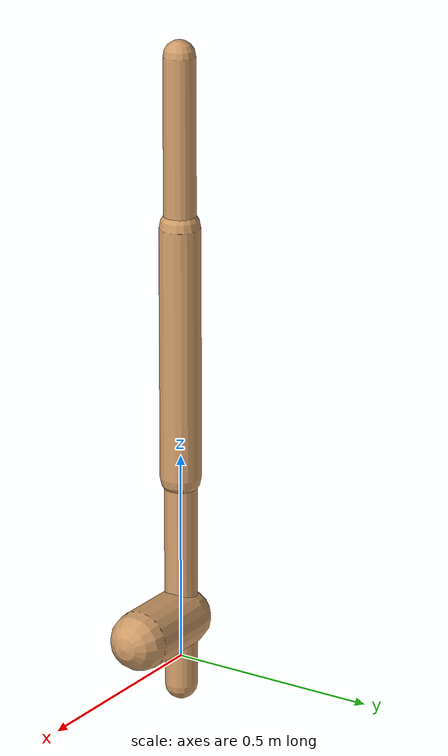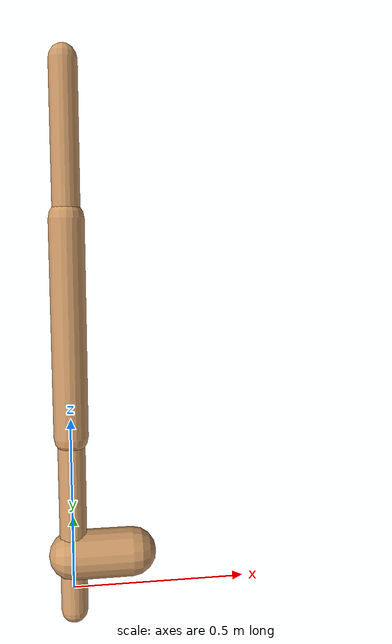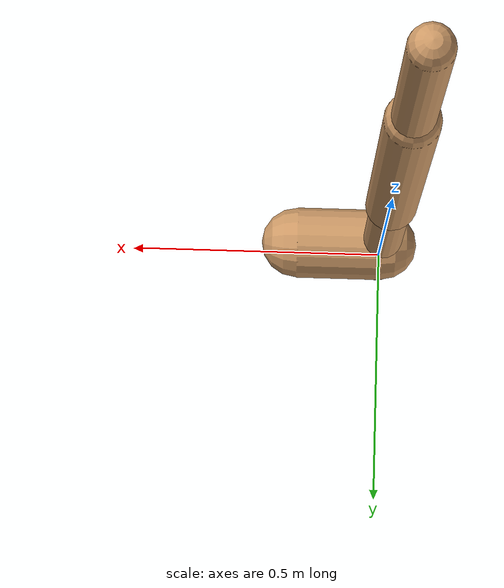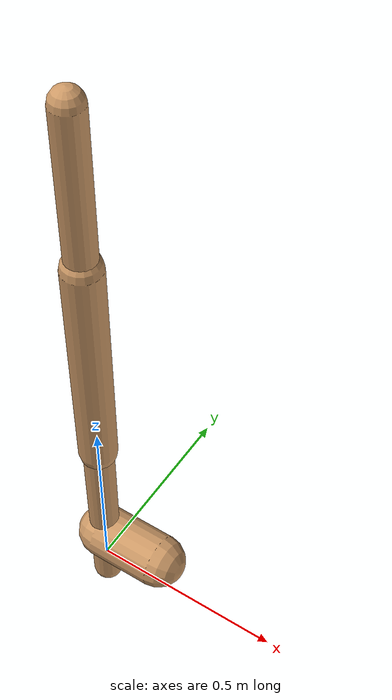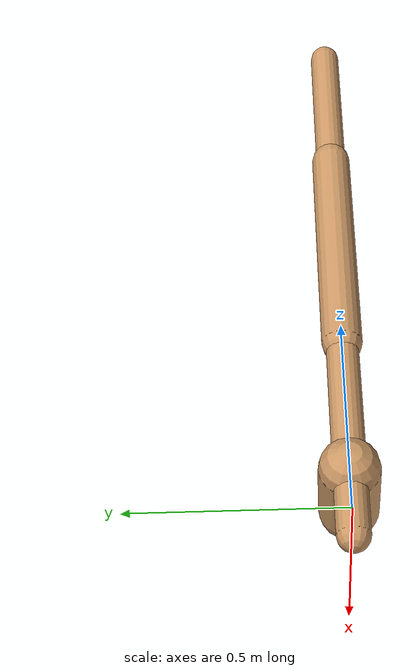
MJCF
<mujoco model="walker2d">
  <compiler angle="degree" coordinate="global" inertiafromgeom="true" />
  <default>
    <joint armature="0.01" damping=".1" limited="true" />
    <geom conaffinity="0" condim="3" contype="1" density="1000" friction="0.8 .1 .1" rgba="0.8 0.6 .4 1" />
  </default>
  <option integrator="RK4" timestep="0.002" />
  <worldbody>

    <body name="torso" pos="0 0 0.3171914655437166">
      <joint armature="0" axis="1 0 0" damping="0" limited="false" name="ignorex" pos="0 0 0" stiffness="0" type="slide" />
      <joint armature="0" axis="0 0 1" damping="0" limited="false" name="ignorez" pos="0 0 0" ref="1.25" stiffness="0" type="slide" />
      <joint armature="0" axis="0 1 0" damping="0" limited="false" name="ignorey" pos="0 0 0" stiffness="0" type="hinge" />
      <geom fromto="0 0 1.45 0 0 1.05" name="torso_geom" size="0.03740246252577111" type="capsule" />
      <body name="thigh">
        <joint axis="0 -1 0" name="thigh_joint" pos="0 0 1.05" range="-150 0" type="hinge" />
        <geom fromto="0.0 0.0 1.05 0.0 0.0 0.44975141105823946" name="thigh_geom" size="0.04806048893257922" type="capsule" />
        <body name="leg" pos="0.0 0.0 -0.15024858894176052">
          <joint axis="0 -1 0" name="leg_joint" pos="0 0 0.6" range="-150 0" type="hinge" />
          <geom fromto="0.0 0.0 0.6 0.0 0.0 -0.06694287660195608" name="leg_geom" size="0.038448391146063375" type="capsule" />
          <body name="foot" pos="0.0 0.0 -0.1669428766019561">
            <joint axis="0 -1 0" name="foot_joint" pos="0 0 0.1" range="-45 45" type="hinge" />
            <geom fromto="0.0 0.0 0.1 0.16836411662378525 0.0 0.1" name="foot_geom" size="0.07012519195762777" type="capsule" />
          </body>
        </body>
      </body>

      <body name="thigh_left">
        <joint axis="0 -1 0" name="thigh_left_joint" pos="0 0 1.05" range="-150 0" type="hinge" />
        <geom fromto="0.0 0.0 1.05 0.0 0.0 0.44975141105823946" name="thigh_left_geom" rgba=".7 .3 .6 1" size="0.04806048893257922" type="capsule" />
        <body name="leg_left" pos="0.0 0.0 -0.15024858894176052">
          <joint axis="0 -1 0" name="leg_left_joint" pos="0 0 0.6" range="-150 0" type="hinge" />
          <geom fromto="0.0 0.0 0.6 0.0 0.0 -0.06694287660195608" name="leg_left_geom" rgba=".7 .3 .6 1" size="0.038448391146063375" type="capsule" />
          <body name="foot_left" pos="0.0 0.0 -0.1669428766019561">
            <joint axis="0 -1 0" name="foot_left_joint" pos="0 0 0.1" range="-45 45" type="hinge" />
            <geom fromto="0.0 0.0 0.1 0.16836411662378525 0.0 0.1" name="foot_left_geom" rgba=".7 .3 .6 1" size="0.07012519195762777" type="capsule" />
          </body>
        </body>
      </body>
    </body>
  </worldbody>
  <actuator>

    <motor ctrllimited="true" ctrlrange="-1.0 1.0" gear="100" joint="thigh_joint" />
    <motor ctrllimited="true" ctrlrange="-1.0 1.0" gear="100" joint="leg_joint" />
    <motor ctrllimited="true" ctrlrange="-1.0 1.0" gear="100" joint="foot_joint" />
    <motor ctrllimited="true" ctrlrange="-1.0 1.0" gear="100" joint="thigh_left_joint" />
    <motor ctrllimited="true" ctrlrange="-1.0 1.0" gear="100" joint="leg_left_joint" />
    <motor ctrllimited="true" ctrlrange="-1.0 1.0" gear="100" joint="foot_left_joint" />

  </actuator>
</mujoco>
